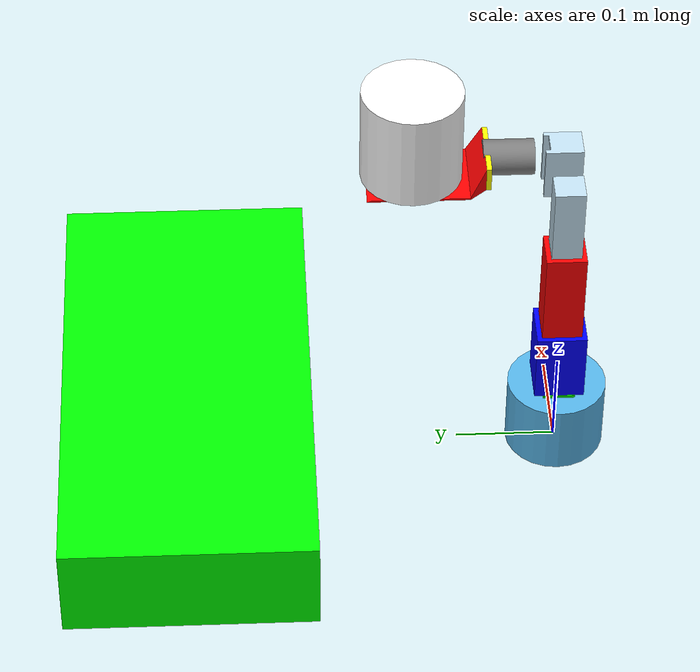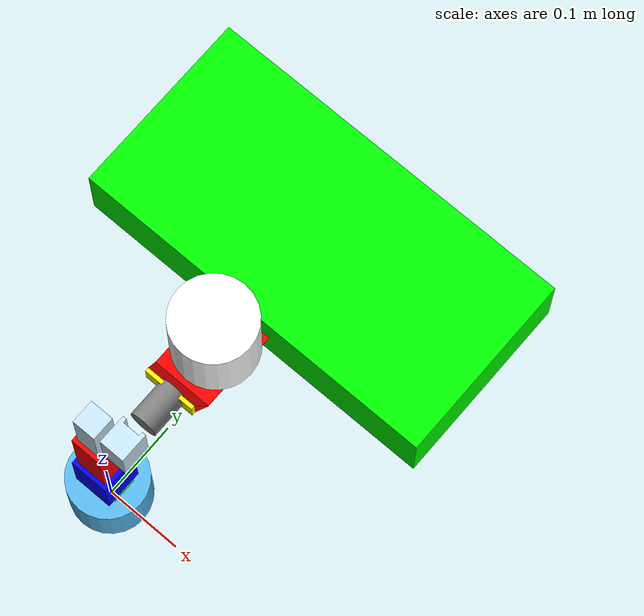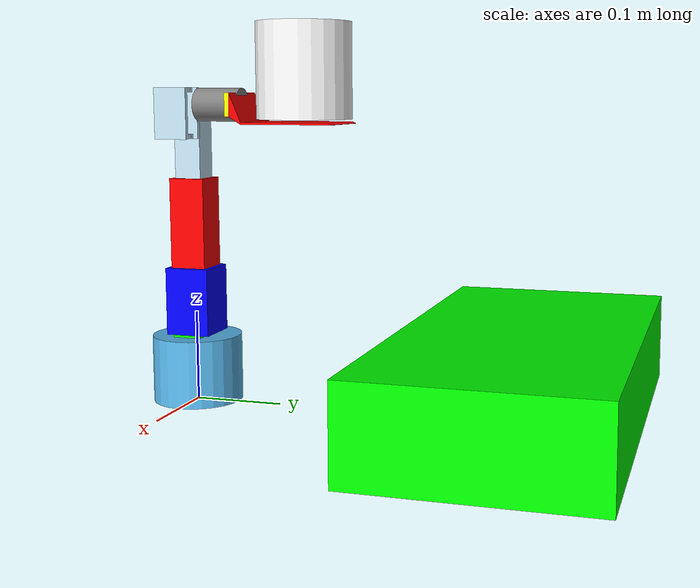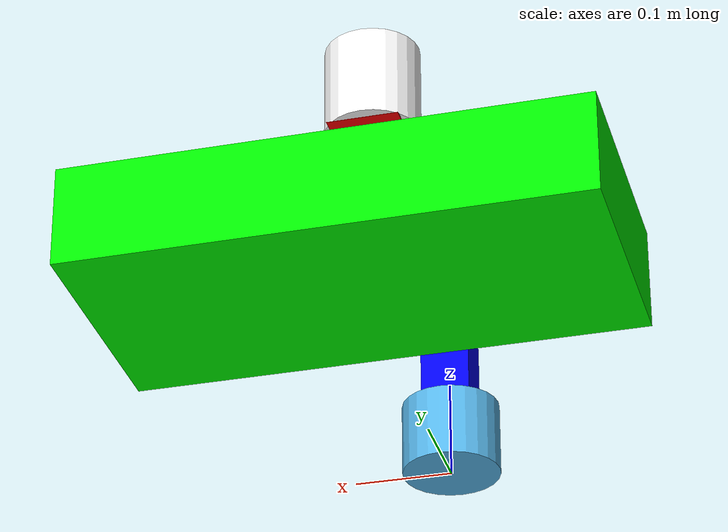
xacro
<?xml version="1.0"?>
<robot xmlns:xacro="http://www.ros.org/wiki/xacro" name="proto_bot">
    <xacro:arg name="initial_positions_file" default="initial_positions.yaml" />

    <!-- Import proto_bot urdf file -->
    <xacro:include filename="$(find bot_desc)/urdf/bot.urdf.xacro" />

    <!-- Import control_xacro -->
    <xacro:include filename="proto_bot.ros2_control.xacro" />

    <xacro:proto_bot_ros2_control name="FakeSystem" initial_positions_file="$(arg initial_positions_file)"/>

</robot>

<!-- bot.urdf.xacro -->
<robot xmlns:xacro="http://www.ros.org/wiki/xacro" name="proto_bot">

    <xacro:arg name="is_sim" default="true"/>
    <xacro:include filename="$(find bot_desc)/urdf/bot_ros2_control.xacro"/>
    <xacro:include filename="$(find bot_desc)/urdf/bot_gazebo.xacro"/>
    <xacro:macro name="default_inertial" params="mass">
        <inertial>
            <origin xyz="0.0 0.0 0.0" rpy="0.0 0.0 0.0"/>
            <mass value="${mass}" unit="kg"/>
            <inertia ixx="1.0" ixy="0.0" ixz="0.0" iyy="1.0" iyz="0.0" izz="1.0"/>
        </inertial>
    </xacro:macro>

    <link name="world"/>
    <link name="base_cone">
        <visual>
            <origin xyz="0.0 0.0 0.0375" rpy="0.0 0.0 0.0"/>
            <geometry>
                <cylinder radius="0.05" length="0.075"/>
            </geometry>
        </visual>
        <collision>
            <origin xyz="0.0 0.0 0.0375" rpy="0.0 0.0 0.0"/>
            <geometry>
                <cylinder radius="0.05" length="0.075"/>
            </geometry>
        </collision>
        <xacro:default_inertial mass="1.0"/>
    </link>
    <joint name="world_base" type="fixed">
        <origin xyz="0.0 0.0 0.0" rpy="0.0 0.0 0.0"/>
        <parent link="world"/>
        <child link="base_cone"/>
    </joint>

    <link name="shoulder_attachment">
        <visual>
            <origin xyz="0.0 0.0 -0.075" rpy="0.0 0.0 0.0"/>
            <geometry>
                <mesh filename="package://bot_desc/meshes/shoulder_attachment.stl"/>
            </geometry>
            <material name="green_material">
                <color rgba="0 1 0 1"/>
            </material>
        </visual>
        <collision>
            <origin xyz="0.0 0.0 -0.075" rpy="0.0 0.0 0.0"/>
            <geometry>
                <mesh filename="package://bot_desc/meshes/shoulder_attachment.stl"/>
            </geometry>
        </collision>
        <xacro:default_inertial mass="1.0"/>
    </link>
    <joint name="base_to_shoulder_attachment" type="revolute">
        <origin xyz="0 0 0.075" rpy="0 0 0" />
        <parent link="base_cone"/>
        <child link="shoulder_attachment"/>
        <axis xyz="0.0 0.0 1.0"/>
        <limit lower="-1.57" upper="1.57" effort="1.3734" velocity="10.0"/>
    </joint>

    <link name="shoulder_motor">
        <visual>
            <origin xyz="0.0 0.0 0.0375" rpy="0.0 0.0 0.0"/>
            <geometry>
                <box size="0.05 0.050 0.075"/>
            </geometry>
            <material name="blue">
                <color rgba="0 0 1 1"/>
            </material>
        </visual>
        <collision>
            <origin xyz="0.0 0.0 0.03750" rpy="0.0 0.0 0.0"/>
            <geometry>
                <box size="0.05 0.050 0.075"/>
            </geometry>
        </collision>
        <xacro:default_inertial mass="1.0"/>
    </link>
    <joint name="shoulder_attachment_to_shoulder_motor" type="fixed">
        <origin xyz="0.0 0.0 0.0025" rpy="0.0 0.0 0.0"/>
        <parent link="shoulder_attachment"/>
        <child link="shoulder_motor"/>
    </joint>

    <link name="shoulder_arm">
        <visual>
            <origin xyz="0.0 0.0 0.05" rpy="0.0 0.0 0.0"/>
            <geometry>
                <box size="0.04 0.04 0.1"/>
            </geometry>
            <material name="red_material">
                <color rgba="1 0 0 1"/>
            </material>
        </visual>
        <collision>
            <origin xyz="0.0 0.0 0.05" rpy="0.0 0.0 0.0"/>
            <geometry>
                <box size="0.04 0.04 0.1"/>
            </geometry>
        </collision>
        <xacro:default_inertial mass="1.0"/>
    </link>
    <joint name="shoulder_motor_to_shoulder_arm" type="revolute">
        <origin xyz="0.0 0.0 0.075" rpy="0.0 0.0 0.0"/>
        <parent link="shoulder_motor"/>
        <child link="shoulder_arm"/>
        <axis xyz="1.0 0.0 0.0"/>
        <limit lower="-1.57" upper="1.57" effort="7.848" velocity="5.527"/>
    </joint>

    <link name="elbow_arm">
        <visual>
            <origin xyz="0.0 0.0 0.04" rpy="0.0 0.0 0.0"/>
            <geometry>
                <box size="0.03 0.03 0.08"/>
            </geometry>
            <material name="elbow_arm_material">
                <color rgba="0.76862745098039220171 0.88627450980392152857 0.95294117647058818044 1.0"/>
            </material>
        </visual>
        <collision>
            <origin xyz="0.0 0.0 0.04" rpy="0.0 0.0 0.0"/>
            <geometry>
                <box size="0.03 0.03 0.08"/>
            </geometry>
        </collision>
        <xacro:default_inertial mass="1.0"/>
    </link>
    <joint name="shoulder_to_elbow" type="revolute">
        <origin xyz="0.0 0.0 0.1" rpy="0.0 0.0 0.0"/>
        <parent link="shoulder_arm"/>
        <child link="elbow_arm"/>
        <axis xyz="1.0 0.0 0.0"/>
        <limit lower="-1.57" upper="1.57" effort="1.962" velocity="5.236"/>
    </joint>

    <link name="wrist_attachment_1">
        <visual>
            <origin xyz="0.0 0.0 -0.4545" rpy="0.0 0.0 0.0"/>
            <geometry>
                <mesh filename="package://bot_desc/meshes/wrist_attachment_1.stl"/>
            </geometry>
            <material name="wrist_attachment_1_material">
                <color rgba="0.76862745098039220171 0.88627450980392152857 0.95294117647058818044 1.0"/>
            </material>
        </visual>
        <collision>
            <origin xyz="0.0 0.0 -0.4545" rpy="0.0 0.0 0.0"/>
            <geometry>
                <mesh filename="package://bot_desc/meshes/wrist_attachment_1.stl"/>
            </geometry>
        </collision>
        <xacro:default_inertial mass="1.0"/>
    </link>
    <joint name="elbow_to_wrist_attachment" type="revolute">
        <origin xyz="0.0 0.0 0.08" rpy="0.0 0.0 0.0"/>
        <parent link="elbow_arm"/>
        <child link="wrist_attachment_1"/>
        <axis xyz="1.0 0.0 0.0"/>
        <limit lower="-2.75" upper="2.75" effort="1.3734" velocity="10.472"/>
    </joint>

    <link name='utensil_attachment'>
        <visual>
            <origin xyz="-0.04 -0.03625 -0.46" rpy="0.0 0.0 0.0"/>
            <geometry>
                <mesh filename="package://bot_desc/meshes/utensil_attachment.stl"/>
            </geometry>
            <material name="utensil_attachment_material">
                <color rgba="0.49803921568627451677 0.49803921568627451677 0.49803921568627451677 1.0"/>
            </material>
        </visual>
        <collision>
            <origin xyz="-0.04 -0.03625 -0.46" rpy="0.0 0.0 0.0"/>
            <geometry>
                <mesh filename="package://bot_desc/meshes/utensil_attachment.stl"/>
            </geometry>
        </collision>
        <xacro:default_inertial mass="1.0"/>
    </link>
    <joint name="wrist_to_utensil" type="revolute">
        <origin xyz="0.0425 0.03 0.0" rpy="0.0 0.0 0.0"/>
        <parent link="wrist_attachment_1"/>
        <child link="utensil_attachment"/>
        <axis xyz="0.0 1.0 0.0"/>
        <limit lower="-3.14" upper="3.14" effort="1.3734" velocity="10.0"/>
    </joint>

    <link name='handle'>
        <visual>
            <origin xyz="0 0 0" rpy="0.0 0.0 0.0"/>
            <geometry>
                <mesh filename="package://bot_desc/meshes/handle.stl"/>
            </geometry>
            <material name="idk">
                <color rgba="1 1 0 1"/>
            </material>
        </visual>
        <collision>
            <origin xyz="0 0 0" rpy="0.0 0.0 0.0"/>
            <geometry>
                <mesh filename="package://bot_desc/meshes/handle.stl"/>
            </geometry>
        </collision>
        <xacro:default_inertial mass="1.0"/>
    </link>
    <joint name="utensil_to_handle" type="fixed">
        <origin xyz="0.0 0.1 -0.018" rpy="0.0 0.0 0.0"/>
        <parent link="utensil_attachment"/>
        <child link="handle"/>
    </joint>

    <link name='spatula'>
        <visual>
            <origin xyz="0 0 0" rpy="0.0 0.0 0.0"/>
            <geometry>
                <mesh filename="package://bot_desc/meshes/spatula.stl"/>
            </geometry>
            <material name="idk2">
                <color rgba="1 0 0 1"/>
            </material>
        </visual>
        <collision>
            <origin xyz="0 0 0" rpy="0.0 0.0 0.0"/>
            <geometry>
                <mesh filename="package://bot_desc/meshes/spatula.stl"/>
            </geometry>
        </collision>
        <xacro:default_inertial mass="1.0"/>
    </link>
    <joint name="handle_to_spatula" type="fixed">
        <origin xyz="0.0 0.0 0.0" rpy="0.0 0.0 0.0"/>
        <parent link="handle"/>
        <child link="spatula"/>
    </joint>

    <link name="burger">
        <visual name="">
            <origin xyz="0.0 0.0 0.05" rpy="0.0 0.0 0.0"/>
            <geometry>
                <cylinder radius="0.05" length="0.1"/>
            </geometry>
            <material name="">
                <color rgba="1.0 1.0 1.0 1.0"/>
            </material>
        </visual>
        <collision>
            <origin xyz="0.0 0.0 0.05" rpy="0.0 0.0 0.0"/>
            <geometry>
                <cylinder radius="0.05" length="0.1"/>
            </geometry>
        </collision>
        <xacro:default_inertial mass="10.0"/>
    </link>
    <joint name="spatula_to_burger" type="fixed">
        <origin xyz="0.0 0.02 0.005" rpy="0.0 0.0 0.0"/>
        <parent link="spatula"/>
        <child link="burger"/>
    </joint>

    <link name="grill">
        <visual name="">
            <origin xyz="0 0.125 0.05" rpy="0.0 0.0 0.0"/>
            <geometry>
                <box size="0.500 0.250 0.1"/>
            </geometry>
            <material name="">
                <color rgba="0.0 1.0 0.0 1.0"/>
                <texture filename=""/>
            </material>
        </visual>
        <collision>
            <origin xyz="0 0.125 0.0" rpy="0.0 0.0 0.0"/>
            <geometry>
                <box size="0.500 0.250 0.0"/>
            </geometry>
        </collision>
        <xacro:default_inertial mass="1.0"/>
    </link>
    <joint name="grill_to_world" type="fixed">
        <origin xyz="0 0.25 0.0" rpy="0.0 0.0 0.0"/>
        <parent link="world"/>
        <child link="grill"/>
    </joint>

</robot>
